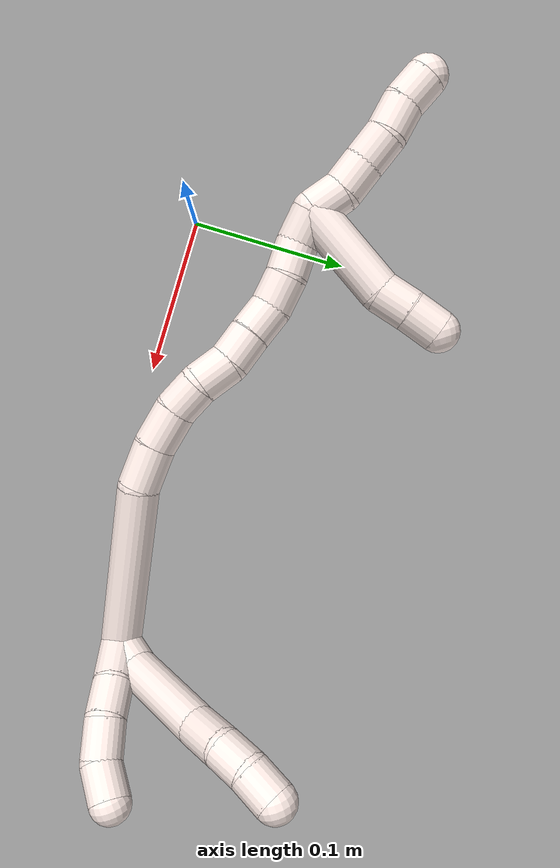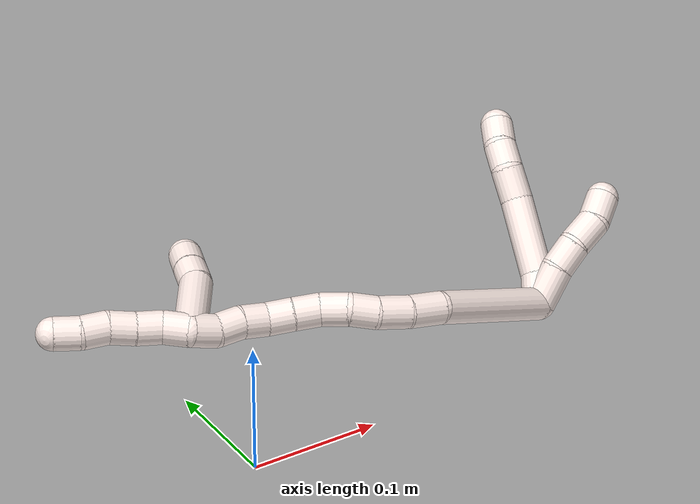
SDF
<sdf version="1.7">
 <world name="default">
  <model name="11">
   <static>0</static>
   <link name="11">
    <collision name="collision-cylinder-e_1_2_8">
     <pose>-0.00368 0.007855 -0.007431 -2.32845 -0.328066 0.734028</pose>
     <geometry><cylinder><radius>0.0125</radius><length>0.022845</length></cylinder></geometry>
     <surface>
      <friction><ode><mu>1.16</mu><mu2>1.16</mu2><slip1>0</slip1><slip2>0</slip2></ode></friction>
      <contact><ode><kp>1e+06</kp><kd>1</kd><max_vel>0</max_vel><min_depth>0.001</min_depth></ode></contact>
     </surface>
    </collision>
    <visual name="visual-cylinder-e_1_2_8">
     <pose>-0.00368 0.007855 -0.007431 -2.32845 -0.328066 0.734028</pose>
     <geometry><cylinder><radius>0.0125</radius><length>0.022845</length></cylinder></geometry>
     <material><ambient>1 0.933333 0.909804 1</ambient></material>
    </visual>
    <collision name="collision-cylinder-e_2_8_9">
     <pose>-0.021785 0.038284 -0.029395 -2.14282 -0.49302 0.864381</pose>
     <geometry><cylinder><radius>0.0125</radius><length>0.060954</length></cylinder></geometry>
     <surface>
      <friction><ode><mu>1.16</mu><mu2>1.16</mu2><slip1>0</slip1><slip2>0</slip2></ode></friction>
      <contact><ode><kp>1e+06</kp><kd>1</kd><max_vel>0</max_vel><min_depth>0.001</min_depth></ode></contact>
     </surface>
    </collision>
    <visual name="visual-cylinder-e_2_8_9">
     <pose>-0.021785 0.038284 -0.029395 -2.14282 -0.49302 0.864381</pose>
     <geometry><cylinder><radius>0.0125</radius><length>0.060954</length></cylinder></geometry>
     <material><ambient>1 0.933333 0.909804 1</ambient></material>
    </visual>
    <collision name="collision-cylinder-e_3_9_10">
     <pose>-0.042219 0.071228 -0.048208 -1.96209 -0.491767 0.717577</pose>
     <geometry><cylinder><radius>0.0125</radius><length>0.025453</length></cylinder></geometry>
     <surface>
      <friction><ode><mu>1.16</mu><mu2>1.16</mu2><slip1>0</slip1><slip2>0</slip2></ode></friction>
      <contact><ode><kp>1e+06</kp><kd>1</kd><max_vel>0</max_vel><min_depth>0.001</min_depth></ode></contact>
     </surface>
    </collision>
    <visual name="visual-cylinder-e_3_9_10">
     <pose>-0.042219 0.071228 -0.048208 -1.96209 -0.491767 0.717577</pose>
     <geometry><cylinder><radius>0.0125</radius><length>0.025453</length></cylinder></geometry>
     <material><ambient>1 0.933333 0.909804 1</ambient></material>
    </visual>
    <collision name="collision-cylinder-e_4_10_11">
     <pose>-0.053424 0.088184 -0.058225 -2.28761 -0.536594 1.08708</pose>
     <geometry><cylinder><radius>0.0125</radius><length>0.020327</length></cylinder></geometry>
     <surface>
      <friction><ode><mu>1.16</mu><mu2>1.16</mu2><slip1>0</slip1><slip2>0</slip2></ode></friction>
      <contact><ode><kp>1e+06</kp><kd>1</kd><max_vel>0</max_vel><min_depth>0.001</min_depth></ode></contact>
     </surface>
    </collision>
    <visual name="visual-cylinder-e_4_10_11">
     <pose>-0.053424 0.088184 -0.058225 -2.28761 -0.536594 1.08708</pose>
     <geometry><cylinder><radius>0.0125</radius><length>0.020327</length></cylinder></geometry>
     <material><ambient>1 0.933333 0.909804 1</ambient></material>
    </visual>
    <collision name="collision-cylinder-e_5_11_6">
     <pose>-0.06307 0.099646 -0.071753 -2.58216 -0.450967 1.34773</pose>
     <geometry><cylinder><radius>0.0125</radius><length>0.020421</length></cylinder></geometry>
     <surface>
      <friction><ode><mu>1.16</mu><mu2>1.16</mu2><slip1>0</slip1><slip2>0</slip2></ode></friction>
      <contact><ode><kp>1e+06</kp><kd>1</kd><max_vel>0</max_vel><min_depth>0.001</min_depth></ode></contact>
     </surface>
    </collision>
    <visual name="visual-cylinder-e_5_11_6">
     <pose>-0.06307 0.099646 -0.071753 -2.58216 -0.450967 1.34773</pose>
     <geometry><cylinder><radius>0.0125</radius><length>0.020421</length></cylinder></geometry>
     <material><ambient>1 0.933333 0.909804 1</ambient></material>
    </visual>
    <collision name="collision-cylinder-e_1_2_12">
     <pose>0.004027 0.012219 -0.007814 -2.13975 0.270844 -0.487828</pose>
     <geometry><cylinder><radius>0.0125</radius><length>0.030106</length></cylinder></geometry>
     <surface>
      <friction><ode><mu>1.16</mu><mu2>1.16</mu2><slip1>0</slip1><slip2>0</slip2></ode></friction>
      <contact><ode><kp>1e+06</kp><kd>1</kd><max_vel>0</max_vel><min_depth>0.001</min_depth></ode></contact>
     </surface>
    </collision>
    <visual name="visual-cylinder-e_1_2_12">
     <pose>0.004027 0.012219 -0.007814 -2.13975 0.270844 -0.487828</pose>
     <geometry><cylinder><radius>0.0125</radius><length>0.030106</length></cylinder></geometry>
     <material><ambient>1 0.933333 0.909804 1</ambient></material>
    </visual>
    <collision name="collision-cylinder-e_2_12_13">
     <pose>0.012072 0.032226 -0.022773 -2.31318 0.363238 -0.791359</pose>
     <geometry><cylinder><radius>0.0125</radius><length>0.022613</length></cylinder></geometry>
     <surface>
      <friction><ode><mu>1.16</mu><mu2>1.16</mu2><slip1>0</slip1><slip2>0</slip2></ode></friction>
      <contact><ode><kp>1e+06</kp><kd>1</kd><max_vel>0</max_vel><min_depth>0.001</min_depth></ode></contact>
     </surface>
    </collision>
    <visual name="visual-cylinder-e_2_12_13">
     <pose>0.012072 0.032226 -0.022773 -2.31318 0.363238 -0.791359</pose>
     <geometry><cylinder><radius>0.0125</radius><length>0.022613</length></cylinder></geometry>
     <material><ambient>1 0.933333 0.909804 1</ambient></material>
    </visual>
    <collision name="collision-cylinder-e_3_13_14">
     <pose>0.020162 0.04607 -0.03989 -2.59577 0.335838 -1.0891</pose>
     <geometry><cylinder><radius>0.0125</radius><length>0.024715</length></cylinder></geometry>
     <surface>
      <friction><ode><mu>1.16</mu><mu2>1.16</mu2><slip1>0</slip1><slip2>0</slip2></ode></friction>
      <contact><ode><kp>1e+06</kp><kd>1</kd><max_vel>0</max_vel><min_depth>0.001</min_depth></ode></contact>
     </surface>
    </collision>
    <visual name="visual-cylinder-e_3_13_14">
     <pose>0.020162 0.04607 -0.03989 -2.59577 0.335838 -1.0891</pose>
     <geometry><cylinder><radius>0.0125</radius><length>0.024715</length></cylinder></geometry>
     <material><ambient>1 0.933333 0.909804 1</ambient></material>
    </visual>
    <collision name="collision-cylinder-e_4_14_5">
     <pose>0.024153 0.05814 -0.059409 -2.57958 -0.007172 0.024848</pose>
     <geometry><cylinder><radius>0.0125</radius><length>0.022566</length></cylinder></geometry>
     <surface>
      <friction><ode><mu>1.16</mu><mu2>1.16</mu2><slip1>0</slip1><slip2>0</slip2></ode></friction>
      <contact><ode><kp>1e+06</kp><kd>1</kd><max_vel>0</max_vel><min_depth>0.001</min_depth></ode></contact>
     </surface>
    </collision>
    <visual name="visual-cylinder-e_4_14_5">
     <pose>0.024153 0.05814 -0.059409 -2.57958 -0.007172 0.024848</pose>
     <geometry><cylinder><radius>0.0125</radius><length>0.022566</length></cylinder></geometry>
     <material><ambient>1 0.933333 0.909804 1</ambient></material>
    </visual>
    <collision name="collision-cylinder-e_1_2_15">
     <pose>-0.022638 0.014159 0.046149 -0.297684 -0.438512 0.066805</pose>
     <geometry><cylinder><radius>0.0125</radius><length>0.106634</length></cylinder></geometry>
     <surface>
      <friction><ode><mu>1.16</mu><mu2>1.16</mu2><slip1>0</slip1><slip2>0</slip2></ode></friction>
      <contact><ode><kp>1e+06</kp><kd>1</kd><max_vel>0</max_vel><min_depth>0.001</min_depth></ode></contact>
     </surface>
    </collision>
    <visual name="visual-cylinder-e_1_2_15">
     <pose>-0.022638 0.014159 0.046149 -0.297684 -0.438512 0.066805</pose>
     <geometry><cylinder><radius>0.0125</radius><length>0.106634</length></cylinder></geometry>
     <material><ambient>1 0.933333 0.909804 1</ambient></material>
    </visual>
    <collision name="collision-cylinder-e_2_15_16">
     <pose>-0.053829 0.029411 0.102521 -0.10661 -0.693932 0.038581</pose>
     <geometry><cylinder><radius>0.0125</radius><length>0.026746</length></cylinder></geometry>
     <surface>
      <friction><ode><mu>1.16</mu><mu2>1.16</mu2><slip1>0</slip1><slip2>0</slip2></ode></friction>
      <contact><ode><kp>1e+06</kp><kd>1</kd><max_vel>0</max_vel><min_depth>0.001</min_depth></ode></contact>
     </surface>
    </collision>
    <visual name="visual-cylinder-e_2_15_16">
     <pose>-0.053829 0.029411 0.102521 -0.10661 -0.693932 0.038581</pose>
     <geometry><cylinder><radius>0.0125</radius><length>0.026746</length></cylinder></geometry>
     <material><ambient>1 0.933333 0.909804 1</ambient></material>
    </visual>
    <collision name="collision-cylinder-e_3_16_17">
     <pose>-0.071601 0.031906 0.120831 -0.171463 -0.843288 0.07706</pose>
     <geometry><cylinder><radius>0.0125</radius><length>0.024689</length></cylinder></geometry>
     <surface>
      <friction><ode><mu>1.16</mu><mu2>1.16</mu2><slip1>0</slip1><slip2>0</slip2></ode></friction>
      <contact><ode><kp>1e+06</kp><kd>1</kd><max_vel>0</max_vel><min_depth>0.001</min_depth></ode></contact>
     </surface>
    </collision>
    <visual name="visual-cylinder-e_3_16_17">
     <pose>-0.071601 0.031906 0.120831 -0.171463 -0.843288 0.07706</pose>
     <geometry><cylinder><radius>0.0125</radius><length>0.024689</length></cylinder></geometry>
     <material><ambient>1 0.933333 0.909804 1</ambient></material>
    </visual>
    <collision name="collision-cylinder-e_4_17_18">
     <pose>-0.089515 0.035088 0.133778 -0.351563 -1.03394 0.201283</pose>
     <geometry><cylinder><radius>0.0125</radius><length>0.020236</length></cylinder></geometry>
     <surface>
      <friction><ode><mu>1.16</mu><mu2>1.16</mu2><slip1>0</slip1><slip2>0</slip2></ode></friction>
      <contact><ode><kp>1e+06</kp><kd>1</kd><max_vel>0</max_vel><min_depth>0.001</min_depth></ode></contact>
     </surface>
    </collision>
    <visual name="visual-cylinder-e_4_17_18">
     <pose>-0.089515 0.035088 0.133778 -0.351563 -1.03394 0.201283</pose>
     <geometry><cylinder><radius>0.0125</radius><length>0.020236</length></cylinder></geometry>
     <material><ambient>1 0.933333 0.909804 1</ambient></material>
    </visual>
    <collision name="collision-cylinder-e_5_18_19">
     <pose>-0.108314 0.036127 0.14189 0.224738 -1.25178 -0.162776</pose>
     <geometry><cylinder><radius>0.0125</radius><length>0.021284</length></cylinder></geometry>
     <surface>
      <friction><ode><mu>1.16</mu><mu2>1.16</mu2><slip1>0</slip1><slip2>0</slip2></ode></friction>
      <contact><ode><kp>1e+06</kp><kd>1</kd><max_vel>0</max_vel><min_depth>0.001</min_depth></ode></contact>
     </surface>
    </collision>
    <visual name="visual-cylinder-e_5_18_19">
     <pose>-0.108314 0.036127 0.14189 0.224738 -1.25178 -0.162776</pose>
     <geometry><cylinder><radius>0.0125</radius><length>0.021284</length></cylinder></geometry>
     <material><ambient>1 0.933333 0.909804 1</ambient></material>
    </visual>
    <collision name="collision-cylinder-e_6_19_20">
     <pose>-0.126665 0.034373 0.150913 0.173354 -0.953155 -0.089662</pose>
     <geometry><cylinder><radius>0.0125</radius><length>0.020228</length></cylinder></geometry>
     <surface>
      <friction><ode><mu>1.16</mu><mu2>1.16</mu2><slip1>0</slip1><slip2>0</slip2></ode></friction>
      <contact><ode><kp>1e+06</kp><kd>1</kd><max_vel>0</max_vel><min_depth>0.001</min_depth></ode></contact>
     </surface>
    </collision>
    <visual name="visual-cylinder-e_6_19_20">
     <pose>-0.126665 0.034373 0.150913 0.173354 -0.953155 -0.089662</pose>
     <geometry><cylinder><radius>0.0125</radius><length>0.020228</length></cylinder></geometry>
     <material><ambient>1 0.933333 0.909804 1</ambient></material>
    </visual>
    <collision name="collision-cylinder-e_7_20_21">
     <pose>-0.143239 0.031951 0.162068 0.256335 -0.981546 -0.137518</pose>
     <geometry><cylinder><radius>0.0125</radius><length>0.020037</length></cylinder></geometry>
     <surface>
      <friction><ode><mu>1.16</mu><mu2>1.16</mu2><slip1>0</slip1><slip2>0</slip2></ode></friction>
      <contact><ode><kp>1e+06</kp><kd>1</kd><max_vel>0</max_vel><min_depth>0.001</min_depth></ode></contact>
     </surface>
    </collision>
    <visual name="visual-cylinder-e_7_20_21">
     <pose>-0.143239 0.031951 0.162068 0.256335 -0.981546 -0.137518</pose>
     <geometry><cylinder><radius>0.0125</radius><length>0.020037</length></cylinder></geometry>
     <material><ambient>1 0.933333 0.909804 1</ambient></material>
    </visual>
    <collision name="collision-cylinder-e_8_21_22">
     <pose>-0.158543 0.031127 0.174625 -0.081845 -0.769893 0.033176</pose>
     <geometry><cylinder><radius>0.0125</radius><length>0.020041</length></cylinder></geometry>
     <surface>
      <friction><ode><mu>1.16</mu><mu2>1.16</mu2><slip1>0</slip1><slip2>0</slip2></ode></friction>
      <contact><ode><kp>1e+06</kp><kd>1</kd><max_vel>0</max_vel><min_depth>0.001</min_depth></ode></contact>
     </surface>
    </collision>
    <visual name="visual-cylinder-e_8_21_22">
     <pose>-0.158543 0.031127 0.174625 -0.081845 -0.769893 0.033176</pose>
     <geometry><cylinder><radius>0.0125</radius><length>0.020041</length></cylinder></geometry>
     <material><ambient>1 0.933333 0.909804 1</ambient></material>
    </visual>
    <collision name="collision-cylinder-e_9_22_23">
     <pose>-0.171547 0.030618 0.18972 0.137536 -0.645772 -0.046083</pose>
     <geometry><cylinder><radius>0.0125</radius><length>0.020036</length></cylinder></geometry>
     <surface>
      <friction><ode><mu>1.16</mu><mu2>1.16</mu2><slip1>0</slip1><slip2>0</slip2></ode></friction>
      <contact><ode><kp>1e+06</kp><kd>1</kd><max_vel>0</max_vel><min_depth>0.001</min_depth></ode></contact>
     </surface>
    </collision>
    <visual name="visual-cylinder-e_9_22_23">
     <pose>-0.171547 0.030618 0.18972 0.137536 -0.645772 -0.046083</pose>
     <geometry><cylinder><radius>0.0125</radius><length>0.020036</length></cylinder></geometry>
     <material><ambient>1 0.933333 0.909804 1</ambient></material>
    </visual>
    <collision name="collision-cylinder-e_10_23_1">
     <pose>-0.18441 0.031522 0.204716 -0.275799 -0.749122 0.109007</pose>
     <geometry><cylinder><radius>0.0125</radius><length>0.020069</length></cylinder></geometry>
     <surface>
      <friction><ode><mu>1.16</mu><mu2>1.16</mu2><slip1>0</slip1><slip2>0</slip2></ode></friction>
      <contact><ode><kp>1e+06</kp><kd>1</kd><max_vel>0</max_vel><min_depth>0.001</min_depth></ode></contact>
     </surface>
    </collision>
    <visual name="visual-cylinder-e_10_23_1">
     <pose>-0.18441 0.031522 0.204716 -0.275799 -0.749122 0.109007</pose>
     <geometry><cylinder><radius>0.0125</radius><length>0.020069</length></cylinder></geometry>
     <material><ambient>1 0.933333 0.909804 1</ambient></material>
    </visual>
    <collision name="collision-cylinder-e_1_1_24">
     <pose>-0.200827 0.034073 0.214589 -0.193677 -1.28116 0.144576</pose>
     <geometry><cylinder><radius>0.0125</radius><length>0.02</length></cylinder></geometry>
     <surface>
      <friction><ode><mu>1.16</mu><mu2>1.16</mu2><slip1>0</slip1><slip2>0</slip2></ode></friction>
      <contact><ode><kp>1e+06</kp><kd>1</kd><max_vel>0</max_vel><min_depth>0.001</min_depth></ode></contact>
     </surface>
    </collision>
    <visual name="visual-cylinder-e_1_1_24">
     <pose>-0.200827 0.034073 0.214589 -0.193677 -1.28116 0.144576</pose>
     <geometry><cylinder><radius>0.0125</radius><length>0.02</length></cylinder></geometry>
     <material><ambient>1 0.933333 0.909804 1</ambient></material>
    </visual>
    <collision name="collision-cylinder-e_2_24_25">
     <pose>-0.218704 0.0348 0.222975 -0.031764 -0.978102 0.016905</pose>
     <geometry><cylinder><radius>0.0125</radius><length>0.02</length></cylinder></geometry>
     <surface>
      <friction><ode><mu>1.16</mu><mu2>1.16</mu2><slip1>0</slip1><slip2>0</slip2></ode></friction>
      <contact><ode><kp>1e+06</kp><kd>1</kd><max_vel>0</max_vel><min_depth>0.001</min_depth></ode></contact>
     </surface>
    </collision>
    <visual name="visual-cylinder-e_2_24_25">
     <pose>-0.218704 0.0348 0.222975 -0.031764 -0.978102 0.016905</pose>
     <geometry><cylinder><radius>0.0125</radius><length>0.02</length></cylinder></geometry>
     <material><ambient>1 0.933333 0.909804 1</ambient></material>
    </visual>
    <collision name="collision-cylinder-e_3_25_26">
     <pose>-0.23529 0.036239 0.234004 -0.227545 -0.977561 0.121389</pose>
     <geometry><cylinder><radius>0.0125</radius><length>0.02</length></cylinder></geometry>
     <surface>
      <friction><ode><mu>1.16</mu><mu2>1.16</mu2><slip1>0</slip1><slip2>0</slip2></ode></friction>
      <contact><ode><kp>1e+06</kp><kd>1</kd><max_vel>0</max_vel><min_depth>0.001</min_depth></ode></contact>
     </surface>
    </collision>
    <visual name="visual-cylinder-e_3_25_26">
     <pose>-0.23529 0.036239 0.234004 -0.227545 -0.977561 0.121389</pose>
     <geometry><cylinder><radius>0.0125</radius><length>0.02</length></cylinder></geometry>
     <material><ambient>1 0.933333 0.909804 1</ambient></material>
    </visual>
    <collision name="collision-cylinder-e_4_26_27">
     <pose>-0.25085 0.036865 0.246289 0.092585 -0.813754 -0.03992</pose>
     <geometry><cylinder><radius>0.0125</radius><length>0.02</length></cylinder></geometry>
     <surface>
      <friction><ode><mu>1.16</mu><mu2>1.16</mu2><slip1>0</slip1><slip2>0</slip2></ode></friction>
      <contact><ode><kp>1e+06</kp><kd>1</kd><max_vel>0</max_vel><min_depth>0.001</min_depth></ode></contact>
     </surface>
    </collision>
    <visual name="visual-cylinder-e_4_26_27">
     <pose>-0.25085 0.036865 0.246289 0.092585 -0.813754 -0.03992</pose>
     <geometry><cylinder><radius>0.0125</radius><length>0.02</length></cylinder></geometry>
     <material><ambient>1 0.933333 0.909804 1</ambient></material>
    </visual>
    <collision name="collision-cylinder-e_5_27_4">
     <pose>-0.266751 0.036376 0.258173 -0.028895 -1.04164 0.016577</pose>
     <geometry><cylinder><radius>0.0125</radius><length>0.02</length></cylinder></geometry>
     <surface>
      <friction><ode><mu>1.16</mu><mu2>1.16</mu2><slip1>0</slip1><slip2>0</slip2></ode></friction>
      <contact><ode><kp>1e+06</kp><kd>1</kd><max_vel>0</max_vel><min_depth>0.001</min_depth></ode></contact>
     </surface>
    </collision>
    <visual name="visual-cylinder-e_5_27_4">
     <pose>-0.266751 0.036376 0.258173 -0.028895 -1.04164 0.016577</pose>
     <geometry><cylinder><radius>0.0125</radius><length>0.02</length></cylinder></geometry>
     <material><ambient>1 0.933333 0.909804 1</ambient></material>
    </visual>
    <collision name="collision-cylinder-e_1_1_28">
     <pose>-0.202107 0.037694 0.184158 -2.99178 -0.370827 2.38041</pose>
     <geometry><cylinder><radius>0.0125</radius><length>0.059958</length></cylinder></geometry>
     <surface>
      <friction><ode><mu>1.16</mu><mu2>1.16</mu2><slip1>0</slip1><slip2>0</slip2></ode></friction>
      <contact><ode><kp>1e+06</kp><kd>1</kd><max_vel>0</max_vel><min_depth>0.001</min_depth></ode></contact>
     </surface>
    </collision>
    <visual name="visual-cylinder-e_1_1_28">
     <pose>-0.202107 0.037694 0.184158 -2.99178 -0.370827 2.38041</pose>
     <geometry><cylinder><radius>0.0125</radius><length>0.059958</length></cylinder></geometry>
     <material><ambient>1 0.933333 0.909804 1</ambient></material>
    </visual>
    <collision name="collision-cylinder-e_2_28_29">
     <pose>-0.219092 0.043394 0.148758 -2.94719 -0.657897 2.58511</pose>
     <geometry><cylinder><radius>0.0125</radius><length>0.020021</length></cylinder></geometry>
     <surface>
      <friction><ode><mu>1.16</mu><mu2>1.16</mu2><slip1>0</slip1><slip2>0</slip2></ode></friction>
      <contact><ode><kp>1e+06</kp><kd>1</kd><max_vel>0</max_vel><min_depth>0.001</min_depth></ode></contact>
     </surface>
    </collision>
    <visual name="visual-cylinder-e_2_28_29">
     <pose>-0.219092 0.043394 0.148758 -2.94719 -0.657897 2.58511</pose>
     <geometry><cylinder><radius>0.0125</radius><length>0.020021</length></cylinder></geometry>
     <material><ambient>1 0.933333 0.909804 1</ambient></material>
    </visual>
    <collision name="collision-cylinder-e_3_29_3">
     <pose>-0.23107 0.045853 0.132921 -3.02695 -0.62498 2.79002</pose>
     <geometry><cylinder><radius>0.0125</radius><length>0.020021</length></cylinder></geometry>
     <surface>
      <friction><ode><mu>1.16</mu><mu2>1.16</mu2><slip1>0</slip1><slip2>0</slip2></ode></friction>
      <contact><ode><kp>1e+06</kp><kd>1</kd><max_vel>0</max_vel><min_depth>0.001</min_depth></ode></contact>
     </surface>
    </collision>
    <visual name="visual-cylinder-e_3_29_3">
     <pose>-0.23107 0.045853 0.132921 -3.02695 -0.62498 2.79002</pose>
     <geometry><cylinder><radius>0.0125</radius><length>0.020021</length></cylinder></geometry>
     <material><ambient>1 0.933333 0.909804 1</ambient></material>
    </visual>
    <collision name="collision-sphere-3">
     <pose>-0.236927 0.046782 0.124856 0 -0 0</pose>
     <geometry><sphere><radius>0.0125</radius></sphere></geometry>
     <surface>
      <friction><ode><mu>1.16</mu><mu2>1.16</mu2><slip1>0</slip1><slip2>0</slip2></ode></friction>
      <contact><ode><kp>1e+06</kp><kd>1</kd><max_vel>0</max_vel><min_depth>0.001</min_depth></ode></contact>
     </surface>
    </collision>
    <visual name="visual-sphere-3">
     <pose>-0.236927 0.046782 0.124856 0 -0 0</pose>
     <geometry><sphere><radius>0.0125</radius></sphere></geometry>
     <material><ambient>1 0.933333 0.909804 1</ambient></material>
    </visual>
    <collision name="collision-sphere-29">
     <pose>-0.225213 0.044924 0.140986 0 -0 0</pose>
     <geometry><sphere><radius>0.0125</radius></sphere></geometry>
     <surface>
      <friction><ode><mu>1.16</mu><mu2>1.16</mu2><slip1>0</slip1><slip2>0</slip2></ode></friction>
      <contact><ode><kp>1e+06</kp><kd>1</kd><max_vel>0</max_vel><min_depth>0.001</min_depth></ode></contact>
     </surface>
    </collision>
    <visual name="visual-sphere-29">
     <pose>-0.225213 0.044924 0.140986 0 -0 0</pose>
     <geometry><sphere><radius>0.0125</radius></sphere></geometry>
     <material><ambient>1 0.933333 0.909804 1</ambient></material>
    </visual>
    <collision name="collision-sphere-28">
     <pose>-0.212971 0.041864 0.15653 0 -0 0</pose>
     <geometry><sphere><radius>0.0125</radius></sphere></geometry>
     <surface>
      <friction><ode><mu>1.16</mu><mu2>1.16</mu2><slip1>0</slip1><slip2>0</slip2></ode></friction>
      <contact><ode><kp>1e+06</kp><kd>1</kd><max_vel>0</max_vel><min_depth>0.001</min_depth></ode></contact>
     </surface>
    </collision>
    <visual name="visual-sphere-28">
     <pose>-0.212971 0.041864 0.15653 0 -0 0</pose>
     <geometry><sphere><radius>0.0125</radius></sphere></geometry>
     <material><ambient>1 0.933333 0.909804 1</ambient></material>
    </visual>
    <collision name="collision-sphere-4">
     <pose>-0.275384 0.036522 0.263219 0 -0 0</pose>
     <geometry><sphere><radius>0.0125</radius></sphere></geometry>
     <surface>
      <friction><ode><mu>1.16</mu><mu2>1.16</mu2><slip1>0</slip1><slip2>0</slip2></ode></friction>
      <contact><ode><kp>1e+06</kp><kd>1</kd><max_vel>0</max_vel><min_depth>0.001</min_depth></ode></contact>
     </surface>
    </collision>
    <visual name="visual-sphere-4">
     <pose>-0.275384 0.036522 0.263219 0 -0 0</pose>
     <geometry><sphere><radius>0.0125</radius></sphere></geometry>
     <material><ambient>1 0.933333 0.909804 1</ambient></material>
    </visual>
    <collision name="collision-sphere-27">
     <pose>-0.258119 0.03623 0.253127 0 -0 0</pose>
     <geometry><sphere><radius>0.0125</radius></sphere></geometry>
     <surface>
      <friction><ode><mu>1.16</mu><mu2>1.16</mu2><slip1>0</slip1><slip2>0</slip2></ode></friction>
      <contact><ode><kp>1e+06</kp><kd>1</kd><max_vel>0</max_vel><min_depth>0.001</min_depth></ode></contact>
     </surface>
    </collision>
    <visual name="visual-sphere-27">
     <pose>-0.258119 0.03623 0.253127 0 -0 0</pose>
     <geometry><sphere><radius>0.0125</radius></sphere></geometry>
     <material><ambient>1 0.933333 0.909804 1</ambient></material>
    </visual>
    <collision name="collision-sphere-26">
     <pose>-0.243582 0.0375 0.239451 0 -0 0</pose>
     <geometry><sphere><radius>0.0125</radius></sphere></geometry>
     <surface>
      <friction><ode><mu>1.16</mu><mu2>1.16</mu2><slip1>0</slip1><slip2>0</slip2></ode></friction>
      <contact><ode><kp>1e+06</kp><kd>1</kd><max_vel>0</max_vel><min_depth>0.001</min_depth></ode></contact>
     </surface>
    </collision>
    <visual name="visual-sphere-26">
     <pose>-0.243582 0.0375 0.239451 0 -0 0</pose>
     <geometry><sphere><radius>0.0125</radius></sphere></geometry>
     <material><ambient>1 0.933333 0.909804 1</ambient></material>
    </visual>
    <collision name="collision-sphere-25">
     <pose>-0.226999 0.034978 0.228558 0 -0 0</pose>
     <geometry><sphere><radius>0.0125</radius></sphere></geometry>
     <surface>
      <friction><ode><mu>1.16</mu><mu2>1.16</mu2><slip1>0</slip1><slip2>0</slip2></ode></friction>
      <contact><ode><kp>1e+06</kp><kd>1</kd><max_vel>0</max_vel><min_depth>0.001</min_depth></ode></contact>
     </surface>
    </collision>
    <visual name="visual-sphere-25">
     <pose>-0.226999 0.034978 0.228558 0 -0 0</pose>
     <geometry><sphere><radius>0.0125</radius></sphere></geometry>
     <material><ambient>1 0.933333 0.909804 1</ambient></material>
    </visual>
    <collision name="collision-sphere-24">
     <pose>-0.21041 0.034623 0.217392 0 -0 0</pose>
     <geometry><sphere><radius>0.0125</radius></sphere></geometry>
     <surface>
      <friction><ode><mu>1.16</mu><mu2>1.16</mu2><slip1>0</slip1><slip2>0</slip2></ode></friction>
      <contact><ode><kp>1e+06</kp><kd>1</kd><max_vel>0</max_vel><min_depth>0.001</min_depth></ode></contact>
     </surface>
    </collision>
    <visual name="visual-sphere-24">
     <pose>-0.21041 0.034623 0.217392 0 -0 0</pose>
     <geometry><sphere><radius>0.0125</radius></sphere></geometry>
     <material><ambient>1 0.933333 0.909804 1</ambient></material>
    </visual>
    <collision name="collision-sphere-1">
     <pose>-0.191243 0.033523 0.211786 0 -0 0</pose>
     <geometry><sphere><radius>0.0125</radius></sphere></geometry>
     <surface>
      <friction><ode><mu>1.16</mu><mu2>1.16</mu2><slip1>0</slip1><slip2>0</slip2></ode></friction>
      <contact><ode><kp>1e+06</kp><kd>1</kd><max_vel>0</max_vel><min_depth>0.001</min_depth></ode></contact>
     </surface>
    </collision>
    <visual name="visual-sphere-1">
     <pose>-0.191243 0.033523 0.211786 0 -0 0</pose>
     <geometry><sphere><radius>0.0125</radius></sphere></geometry>
     <material><ambient>1 0.933333 0.909804 1</ambient></material>
    </visual>
    <collision name="collision-sphere-23">
     <pose>-0.177576 0.029521 0.197646 0 -0 0</pose>
     <geometry><sphere><radius>0.0125</radius></sphere></geometry>
     <surface>
      <friction><ode><mu>1.16</mu><mu2>1.16</mu2><slip1>0</slip1><slip2>0</slip2></ode></friction>
      <contact><ode><kp>1e+06</kp><kd>1</kd><max_vel>0</max_vel><min_depth>0.001</min_depth></ode></contact>
     </surface>
    </collision>
    <visual name="visual-sphere-23">
     <pose>-0.177576 0.029521 0.197646 0 -0 0</pose>
     <geometry><sphere><radius>0.0125</radius></sphere></geometry>
     <material><ambient>1 0.933333 0.909804 1</ambient></material>
    </visual>
    <collision name="collision-sphere-22">
     <pose>-0.165518 0.031715 0.181795 0 -0 0</pose>
     <geometry><sphere><radius>0.0125</radius></sphere></geometry>
     <surface>
      <friction><ode><mu>1.16</mu><mu2>1.16</mu2><slip1>0</slip1><slip2>0</slip2></ode></friction>
      <contact><ode><kp>1e+06</kp><kd>1</kd><max_vel>0</max_vel><min_depth>0.001</min_depth></ode></contact>
     </surface>
    </collision>
    <visual name="visual-sphere-22">
     <pose>-0.165518 0.031715 0.181795 0 -0 0</pose>
     <geometry><sphere><radius>0.0125</radius></sphere></geometry>
     <material><ambient>1 0.933333 0.909804 1</ambient></material>
    </visual>
    <collision name="collision-sphere-21">
     <pose>-0.151568 0.030539 0.167454 0 -0 0</pose>
     <geometry><sphere><radius>0.0125</radius></sphere></geometry>
     <surface>
      <friction><ode><mu>1.16</mu><mu2>1.16</mu2><slip1>0</slip1><slip2>0</slip2></ode></friction>
      <contact><ode><kp>1e+06</kp><kd>1</kd><max_vel>0</max_vel><min_depth>0.001</min_depth></ode></contact>
     </surface>
    </collision>
    <visual name="visual-sphere-21">
     <pose>-0.151568 0.030539 0.167454 0 -0 0</pose>
     <geometry><sphere><radius>0.0125</radius></sphere></geometry>
     <material><ambient>1 0.933333 0.909804 1</ambient></material>
    </visual>
    <collision name="collision-sphere-6">
     <pose>-0.06752 0.104523 -0.079542 0 -0 0</pose>
     <geometry><sphere><radius>0.0125</radius></sphere></geometry>
     <surface>
      <friction><ode><mu>1.16</mu><mu2>1.16</mu2><slip1>0</slip1><slip2>0</slip2></ode></friction>
      <contact><ode><kp>1e+06</kp><kd>1</kd><max_vel>0</max_vel><min_depth>0.001</min_depth></ode></contact>
     </surface>
    </collision>
    <visual name="visual-sphere-6">
     <pose>-0.06752 0.104523 -0.079542 0 -0 0</pose>
     <geometry><sphere><radius>0.0125</radius></sphere></geometry>
     <material><ambient>1 0.933333 0.909804 1</ambient></material>
    </visual>
    <collision name="collision-sphere-11">
     <pose>-0.05862 0.094769 -0.063964 0 -0 0</pose>
     <geometry><sphere><radius>0.0125</radius></sphere></geometry>
     <surface>
      <friction><ode><mu>1.16</mu><mu2>1.16</mu2><slip1>0</slip1><slip2>0</slip2></ode></friction>
      <contact><ode><kp>1e+06</kp><kd>1</kd><max_vel>0</max_vel><min_depth>0.001</min_depth></ode></contact>
     </surface>
    </collision>
    <visual name="visual-sphere-11">
     <pose>-0.05862 0.094769 -0.063964 0 -0 0</pose>
     <geometry><sphere><radius>0.0125</radius></sphere></geometry>
     <material><ambient>1 0.933333 0.909804 1</ambient></material>
    </visual>
    <collision name="collision-sphere-10">
     <pose>-0.048228 0.081598 -0.052486 0 -0 0</pose>
     <geometry><sphere><radius>0.0125</radius></sphere></geometry>
     <surface>
      <friction><ode><mu>1.16</mu><mu2>1.16</mu2><slip1>0</slip1><slip2>0</slip2></ode></friction>
      <contact><ode><kp>1e+06</kp><kd>1</kd><max_vel>0</max_vel><min_depth>0.001</min_depth></ode></contact>
     </surface>
    </collision>
    <visual name="visual-sphere-10">
     <pose>-0.048228 0.081598 -0.052486 0 -0 0</pose>
     <geometry><sphere><radius>0.0125</radius></sphere></geometry>
     <material><ambient>1 0.933333 0.909804 1</ambient></material>
    </visual>
    <collision name="collision-sphere-9">
     <pose>-0.03621 0.060857 -0.043929 0 -0 0</pose>
     <geometry><sphere><radius>0.0125</radius></sphere></geometry>
     <surface>
      <friction><ode><mu>1.16</mu><mu2>1.16</mu2><slip1>0</slip1><slip2>0</slip2></ode></friction>
      <contact><ode><kp>1e+06</kp><kd>1</kd><max_vel>0</max_vel><min_depth>0.001</min_depth></ode></contact>
     </surface>
    </collision>
    <visual name="visual-sphere-9">
     <pose>-0.03621 0.060857 -0.043929 0 -0 0</pose>
     <geometry><sphere><radius>0.0125</radius></sphere></geometry>
     <material><ambient>1 0.933333 0.909804 1</ambient></material>
    </visual>
    <collision name="collision-sphere-2">
     <geometry><sphere><radius>0.0125</radius></sphere></geometry>
     <surface>
      <friction><ode><mu>1.16</mu><mu2>1.16</mu2><slip1>0</slip1><slip2>0</slip2></ode></friction>
      <contact><ode><kp>1e+06</kp><kd>1</kd><max_vel>0</max_vel><min_depth>0.001</min_depth></ode></contact>
     </surface>
    </collision>
    <visual name="visual-sphere-2">
     <geometry><sphere><radius>0.0125</radius></sphere></geometry>
     <material><ambient>1 0.933333 0.909804 1</ambient></material>
    </visual>
    <collision name="collision-sphere-19">
     <pose>-0.11842 0.035383 0.145144 0 -0 0</pose>
     <geometry><sphere><radius>0.0125</radius></sphere></geometry>
     <surface>
      <friction><ode><mu>1.16</mu><mu2>1.16</mu2><slip1>0</slip1><slip2>0</slip2></ode></friction>
      <contact><ode><kp>1e+06</kp><kd>1</kd><max_vel>0</max_vel><min_depth>0.001</min_depth></ode></contact>
     </surface>
    </collision>
    <visual name="visual-sphere-19">
     <pose>-0.11842 0.035383 0.145144 0 -0 0</pose>
     <geometry><sphere><radius>0.0125</radius></sphere></geometry>
     <material><ambient>1 0.933333 0.909804 1</ambient></material>
    </visual>
    <collision name="collision-sphere-8">
     <pose>-0.007361 0.01571 -0.014862 0 -0 0</pose>
     <geometry><sphere><radius>0.0125</radius></sphere></geometry>
     <surface>
      <friction><ode><mu>1.16</mu><mu2>1.16</mu2><slip1>0</slip1><slip2>0</slip2></ode></friction>
      <contact><ode><kp>1e+06</kp><kd>1</kd><max_vel>0</max_vel><min_depth>0.001</min_depth></ode></contact>
     </surface>
    </collision>
    <visual name="visual-sphere-8">
     <pose>-0.007361 0.01571 -0.014862 0 -0 0</pose>
     <geometry><sphere><radius>0.0125</radius></sphere></geometry>
     <material><ambient>1 0.933333 0.909804 1</ambient></material>
    </visual>
    <collision name="collision-sphere-12">
     <pose>0.008055 0.024438 -0.015628 0 -0 0</pose>
     <geometry><sphere><radius>0.0125</radius></sphere></geometry>
     <surface>
      <friction><ode><mu>1.16</mu><mu2>1.16</mu2><slip1>0</slip1><slip2>0</slip2></ode></friction>
      <contact><ode><kp>1e+06</kp><kd>1</kd><max_vel>0</max_vel><min_depth>0.001</min_depth></ode></contact>
     </surface>
    </collision>
    <visual name="visual-sphere-12">
     <pose>0.008055 0.024438 -0.015628 0 -0 0</pose>
     <geometry><sphere><radius>0.0125</radius></sphere></geometry>
     <material><ambient>1 0.933333 0.909804 1</ambient></material>
    </visual>
    <collision name="collision-sphere-13">
     <pose>0.016089 0.040014 -0.029918 0 -0 0</pose>
     <geometry><sphere><radius>0.0125</radius></sphere></geometry>
     <surface>
      <friction><ode><mu>1.16</mu><mu2>1.16</mu2><slip1>0</slip1><slip2>0</slip2></ode></friction>
      <contact><ode><kp>1e+06</kp><kd>1</kd><max_vel>0</max_vel><min_depth>0.001</min_depth></ode></contact>
     </surface>
    </collision>
    <visual name="visual-sphere-13">
     <pose>0.016089 0.040014 -0.029918 0 -0 0</pose>
     <geometry><sphere><radius>0.0125</radius></sphere></geometry>
     <material><ambient>1 0.933333 0.909804 1</ambient></material>
    </visual>
    <collision name="collision-sphere-14">
     <pose>0.024234 0.052127 -0.049862 0 -0 0</pose>
     <geometry><sphere><radius>0.0125</radius></sphere></geometry>
     <surface>
      <friction><ode><mu>1.16</mu><mu2>1.16</mu2><slip1>0</slip1><slip2>0</slip2></ode></friction>
      <contact><ode><kp>1e+06</kp><kd>1</kd><max_vel>0</max_vel><min_depth>0.001</min_depth></ode></contact>
     </surface>
    </collision>
    <visual name="visual-sphere-14">
     <pose>0.024234 0.052127 -0.049862 0 -0 0</pose>
     <geometry><sphere><radius>0.0125</radius></sphere></geometry>
     <material><ambient>1 0.933333 0.909804 1</ambient></material>
    </visual>
    <collision name="collision-sphere-5">
     <pose>0.024072 0.064152 -0.068957 0 -0 0</pose>
     <geometry><sphere><radius>0.0125</radius></sphere></geometry>
     <surface>
      <friction><ode><mu>1.16</mu><mu2>1.16</mu2><slip1>0</slip1><slip2>0</slip2></ode></friction>
      <contact><ode><kp>1e+06</kp><kd>1</kd><max_vel>0</max_vel><min_depth>0.001</min_depth></ode></contact>
     </surface>
    </collision>
    <visual name="visual-sphere-5">
     <pose>0.024072 0.064152 -0.068957 0 -0 0</pose>
     <geometry><sphere><radius>0.0125</radius></sphere></geometry>
     <material><ambient>1 0.933333 0.909804 1</ambient></material>
    </visual>
    <collision name="collision-sphere-15">
     <pose>-0.045276 0.028317 0.092299 0 -0 0</pose>
     <geometry><sphere><radius>0.0125</radius></sphere></geometry>
     <surface>
      <friction><ode><mu>1.16</mu><mu2>1.16</mu2><slip1>0</slip1><slip2>0</slip2></ode></friction>
      <contact><ode><kp>1e+06</kp><kd>1</kd><max_vel>0</max_vel><min_depth>0.001</min_depth></ode></contact>
     </surface>
    </collision>
    <visual name="visual-sphere-15">
     <pose>-0.045276 0.028317 0.092299 0 -0 0</pose>
     <geometry><sphere><radius>0.0125</radius></sphere></geometry>
     <material><ambient>1 0.933333 0.909804 1</ambient></material>
    </visual>
    <collision name="collision-sphere-16">
     <pose>-0.062382 0.030505 0.112743 0 -0 0</pose>
     <geometry><sphere><radius>0.0125</radius></sphere></geometry>
     <surface>
      <friction><ode><mu>1.16</mu><mu2>1.16</mu2><slip1>0</slip1><slip2>0</slip2></ode></friction>
      <contact><ode><kp>1e+06</kp><kd>1</kd><max_vel>0</max_vel><min_depth>0.001</min_depth></ode></contact>
     </surface>
    </collision>
    <visual name="visual-sphere-16">
     <pose>-0.062382 0.030505 0.112743 0 -0 0</pose>
     <geometry><sphere><radius>0.0125</radius></sphere></geometry>
     <material><ambient>1 0.933333 0.909804 1</ambient></material>
    </visual>
    <collision name="collision-sphere-17">
     <pose>-0.08082 0.033306 0.12892 0 -0 0</pose>
     <geometry><sphere><radius>0.0125</radius></sphere></geometry>
     <surface>
      <friction><ode><mu>1.16</mu><mu2>1.16</mu2><slip1>0</slip1><slip2>0</slip2></ode></friction>
      <contact><ode><kp>1e+06</kp><kd>1</kd><max_vel>0</max_vel><min_depth>0.001</min_depth></ode></contact>
     </surface>
    </collision>
    <visual name="visual-sphere-17">
     <pose>-0.08082 0.033306 0.12892 0 -0 0</pose>
     <geometry><sphere><radius>0.0125</radius></sphere></geometry>
     <material><ambient>1 0.933333 0.909804 1</ambient></material>
    </visual>
    <collision name="collision-sphere-18">
     <pose>-0.098209 0.03687 0.138636 0 -0 0</pose>
     <geometry><sphere><radius>0.0125</radius></sphere></geometry>
     <surface>
      <friction><ode><mu>1.16</mu><mu2>1.16</mu2><slip1>0</slip1><slip2>0</slip2></ode></friction>
      <contact><ode><kp>1e+06</kp><kd>1</kd><max_vel>0</max_vel><min_depth>0.001</min_depth></ode></contact>
     </surface>
    </collision>
    <visual name="visual-sphere-18">
     <pose>-0.098209 0.03687 0.138636 0 -0 0</pose>
     <geometry><sphere><radius>0.0125</radius></sphere></geometry>
     <material><ambient>1 0.933333 0.909804 1</ambient></material>
    </visual>
    <collision name="collision-sphere-20">
     <pose>-0.13491 0.033362 0.156682 0 -0 0</pose>
     <geometry><sphere><radius>0.0125</radius></sphere></geometry>
     <surface>
      <friction><ode><mu>1.16</mu><mu2>1.16</mu2><slip1>0</slip1><slip2>0</slip2></ode></friction>
      <contact><ode><kp>1e+06</kp><kd>1</kd><max_vel>0</max_vel><min_depth>0.001</min_depth></ode></contact>
     </surface>
    </collision>
    <visual name="visual-sphere-20">
     <pose>-0.13491 0.033362 0.156682 0 -0 0</pose>
     <geometry><sphere><radius>0.0125</radius></sphere></geometry>
     <material><ambient>1 0.933333 0.909804 1</ambient></material>
    </visual>
    <inertial>
     <pose>-0.097984 0.036111 0.087161 0 -0 0</pose>
     <mass>0.75</mass>
     <inertia>
      <ixx>0.000123</ixx>
      <ixy>0</ixy>
      <ixz>0</ixz>
      <iyy>0.000189</iyy>
      <iyz>0</iyz>
      <izz>2.6e-05</izz>
     </inertia>
    </inertial>
   </link>
   <pose>0.270727 0.033441 0.02995 1.4644 -0.030168 -0.960825</pose>
  </model>
 </world>
</sdf>
